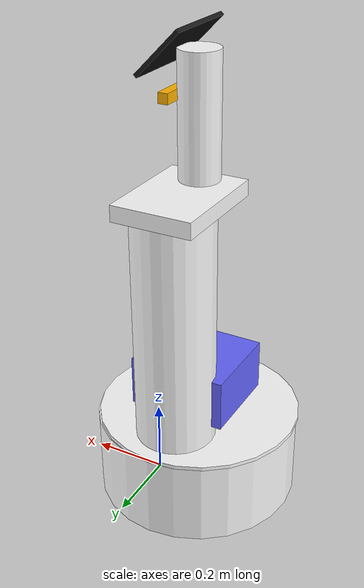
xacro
<?xml version="1.0" ?>

<robot
  xmlns:xacro="http://www.ros.org/wiki/xacro"
  name="korus"
  >

  <!-- ************************** Xacro ************************** -->
  <xacro:property name="pi" value="3.1415926535897931" />
  <xacro:property name="material_white">
    <material name="white">
      <color rgba="1 1 1 1"/>
    </material>
  </xacro:property>
  <xacro:property name="material_orange">
    <material name="orange">
      <color rgba="1.0 0.7 0.0 1"/>
    </material>
  </xacro:property>
  <xacro:property name="material_red">
    <material name="red">
      <color rgba="1.0 0.0 0.0 1"/>
    </material>
  </xacro:property>
  <xacro:property name="material_grey_blue">
    <material name="grey_blue">
      <color rgba="0.4 0.4 1.0 1"/>
    </material>
  </xacro:property>
  <xacro:property name="material_blue">
    <material name="blue">
      <color rgba="0.0 0.0 1.0 1"/>
    </material>
  </xacro:property>
  <xacro:property name="material_green">
    <material name="green">
      <color rgba="0 .8 0 1"/>
    </material>
  </xacro:property>
  <xacro:property name="material_grey">
    <material name="grey">
      <color rgba="0.7 0.7 0.7 1.0"/>
    </material>
  </xacro:property>
  <xacro:property name="material_black">
    <material name="black">
      <color rgba="0.1 0.1 0.1 1"/>
    </material>
  </xacro:property>
  <xacro:macro name="wheel" params="name length radius off_x off_y off_z type">
    <link name="${name}">
      <visual>
        <geometry>
          <cylinder length="${length}" radius="${radius}"/>
     	  </geometry>
        <origin rpy="0 ${pi/2} 0" xyz="0 0 0"/>
        <material name="black">
          <color rgba="0.1 0.1 0.1 1"/>
        </material>
      </visual>
    </link>
    <joint name="${name}" type="${type}">
      <parent link="base_link"/>
      <child link="${name}"/>
      <origin rpy="0 0 ${pi/2}" xyz="${off_x} ${off_y} ${off_z}"/>
    </joint>
  </xacro:macro>

  <!-- ************************** Base *************************** -->
  <link name="base_footprint"></link>
  <joint name="base_joint" type="fixed">
    <parent link="base_footprint"/>
    <child link="base_link"/>
    <origin rpy="0 0 0" xyz="0.0 0.0 0.075"/>
  </joint>
  <link name="base_link">
    <visual>
      <origin rpy="0 0 0" xyz="-0.12 0 0.060"/>
       <geometry>
        <cylinder length="0.22" radius="0.260"/>
      </geometry>
      <xacro:insert_block name="material_white" />
    </visual>
  </link>
  <xacro:property name="front_wheel_bias" value="0.3" />
  <xacro:property name="front_wheel_radius" value="0.075" />
  <xacro:property name="caster_wheel_bias" value="0.2" />
  <xacro:property name="caster_wheel_radius" value="0.040" />
  <xacro:wheel name="wheel_left" length="0.03" radius="${front_wheel_radius}" off_x="0.0" off_y="${front_wheel_bias/2}" off_z="0.0" type="continuous"/>
  <xacro:wheel name="wheel_right" length="0.03" radius="${front_wheel_radius}" off_x="0.0" off_y="-${front_wheel_bias/2}" off_z="0.0" type="continuous"/>
  <xacro:wheel name="caster_left" length="0.02" radius="${caster_wheel_radius}" off_x="-0.24" off_y="${caster_wheel_bias/2}" off_z="-0.035" type="fixed"/>
  <xacro:wheel name="caster_right" length="0.02" radius="${caster_wheel_radius}" off_x="-0.24" off_y="-${caster_wheel_bias/2}" off_z="-0.035" type="fixed"/>

  <!-- ************************** Body ************************** -->

  <joint name="body" type="revolute">
    <parent link="base_link"/>
    <child link="body_link"/>
    <origin rpy="0 0 0" xyz="-0.125 0.0 0.170"/>
    <axis xyz="0 0 1"/>
    <limit effort="10" lower="-${pi}" upper="${pi}" velocity="0.013"/>
  </joint>
  <link name="body_link">
    <visual>
      <origin rpy="0 0 0" xyz="0.0 0.0 0.005"/>
       <geometry>
        <cylinder length="0.01" radius="0.260"/>
      </geometry>
      <xacro:insert_block name="material_white" />
    </visual>
  </link>

  <!-- ************************** upper body ************************** -->
  <joint name="upper_body_joint" type="fixed">
    <parent link="body_link"/>
    <child link="upper_body_link"/>
    <origin rpy="0 0 0" xyz="0  0.125 0.60"/>
  </joint>
  <link name="upper_body_link">
    <visual>
      <geometry>
        <box size="0.2 0.275 0.04" />
      </geometry>
      <origin xyz="0.0 -0.0375 0.02" rpy="0 0 0" />
      <xacro:insert_block name="material_white"/>
    </visual>
  </link>

  <!-- ************************** Head ************************** -->
  <joint name="head_joint" type="revolute">
    <parent link="upper_body_link"/>
    <child link="head_link"/>
    <origin rpy="0 0 0" xyz="0  -0.125 0.04"/>
    <axis xyz="0 0 1"/>
    <limit effort="10" lower="-${pi/2}" upper="${pi/2}" velocity="0.013"/>
  </joint>
  <link name="head_link">
    <visual>
      <geometry>
        <cylinder length="0.30" radius="0.05"/>
      </geometry>
      <origin rpy="0 0 0" xyz="0.0 0.0 0.15"/>
      <xacro:insert_block name="material_white" />
    </visual>
  </link>

  <!-- *********************** Asus Xtion ************************ -->
  <joint name="asus_tilt_joint" type="revolute">
    <parent link="head_link"/>
    <child link="asus_link"/>
    <origin rpy="0 0 -${pi/2}" xyz="0.05 0.0 0.20"/>
    <axis xyz="1 0 0"/>
    <limit effort="10" lower="-${pi/2}" upper="${pi/2}" velocity="0.013"/>
  </joint>
  <link name="asus_link">
    <visual>
      <geometry>
        <box size="0.025 0.15 0.025" />
      </geometry>
      <origin rpy="0 0 ${-pi/2}" xyz="0.0 0.0 0.0"/>
      <xacro:insert_block name="material_orange" />
    </visual>
  </link>

  <!-- ************************ Tablet ************************* -->
  <joint name="tablet_joint" type="fixed">
    <parent link="head_link"/>
    <child link="tablet_link"/>
    <origin rpy="0 0 0" xyz="0.05 0.0 0.30"/>
  </joint>
  <link name="tablet_link">
    <visual>
      <geometry>
        <box size="0.01 0.20 0.15" />
      </geometry>
      <origin rpy="0.0 -${pi/4} 0.0" xyz="0.0 0.0 0.0"/>
      <xacro:insert_block name="material_black" />
    </visual>
  </link>

  <!-- ************************** Arm *************************** -->
  <joint name="torso_turn" type="fixed">
    <parent link="body_link"/>
    <child link="torso_turn_link"/>
    <origin xyz="0.0 0.125 0.005" rpy="0 0 0"/>
  </joint>
  <link name="torso_turn_link">
    <visual>
      <geometry>
        <cylinder length="0.60" radius="0.1"/>
      </geometry>
      <origin rpy="0 0 0" xyz="0 0 0.3"/>
      <xacro:insert_block name="material_white" />
    </visual>
  </link>

  <joint name="torso_lift_offset" type="fixed">
    <parent link="torso_turn_link"/>
    <child link="torso_lift_offset_link"/>
    <origin xyz="0 0 0.114" rpy="0 0 0"/>
    <axis xyz="0 0 1"/>
  </joint>
  <link name="torso_lift_offset_link"></link>

  <joint name="torso_lift" type="prismatic">
    <parent link="torso_lift_offset_link"/>
    <child link="torso_lift_link"/>
    <origin xyz="0 0 0" rpy="0 0 ${pi/2}"/>
    <axis xyz="0 0 1"/>
    <limit effort="10" lower="0.0" upper="0.16" velocity="0.5"/>
  </joint>
  <link name="torso_lift_link">
    <visual>
      <geometry>
        <box size="0.2185 0.25 0.13"/>
      </geometry>
      <origin xyz="-0.10925 0.0 0.0" rpy="0 0 0"/>
      <xacro:insert_block name="material_grey_blue" />
    </visual>
  </link>

</robot>
